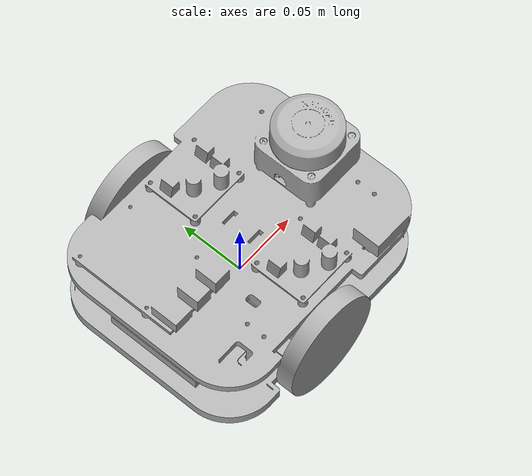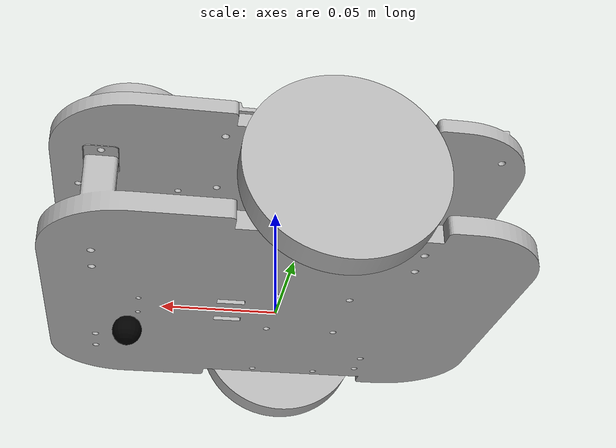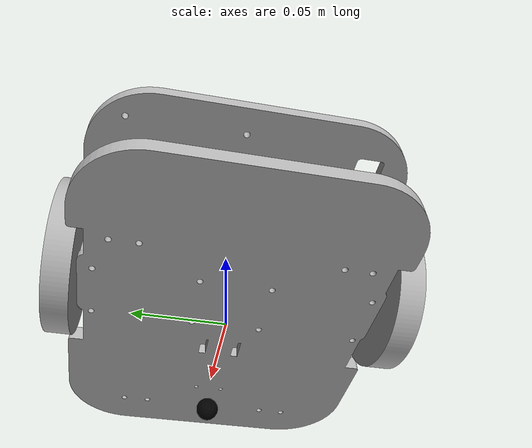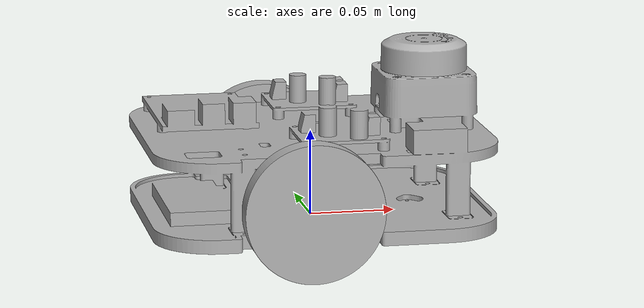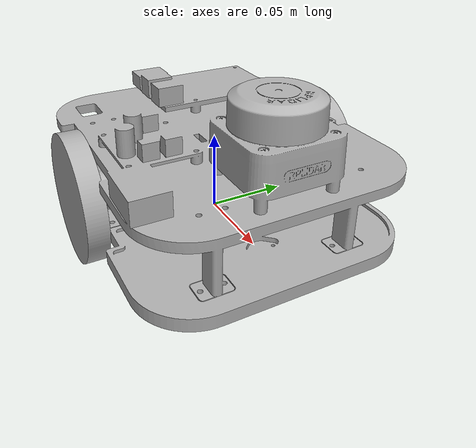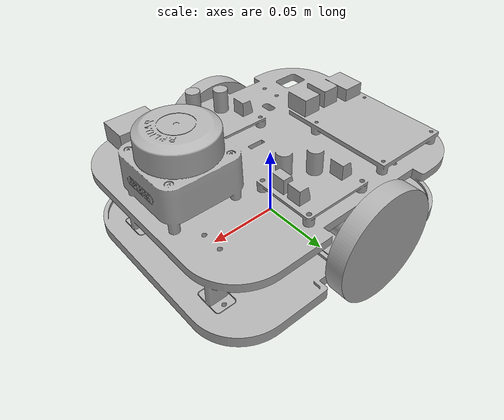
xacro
<?xml version="1.0"?>
<robot xmlns:xacro="http://www.ros.org/wiki/xacro"  name="roboto">

    <xacro:arg name="sim_mode" default="true"/>

    <xacro:include filename="robot_core.xacro" />

    <xacro:if value="$(arg sim_mode)">
        <xacro:include filename="$(find roboto_diffbot)/sim/gazebo/robot.gazebo.xacro"/>
    </xacro:if>

    <xacro:include filename="$(find roboto_diffbot)/sim/gazebo/ros2_control.xacro"/>

</robot>

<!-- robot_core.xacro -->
<robot xmlns:xacro="http://www.ros.org/wiki/xacro" >

    <xacro:include filename="inertial_macros.xacro"/>

    <xacro:include filename="$(find roboto_diffbot)/description/robot/materials.xacro" />

    <link name="base_link">
    <inertial>
        <origin xyz="-0.0022769860063732495 -0.0006106463755604264 0.0295548678674386" rpy="0 0 0"/>
        <mass value="0.5933300696386302"/>
        <inertia ixx="0.001482" iyy="0.002089" izz="0.002883" ixy="6.5e-05" iyz="1.2e-05" ixz="-0.0001"/>
    </inertial>
    <visual>
        <origin xyz="0 0 0" rpy="0 0 0"/>
        <geometry>
        <mesh filename="file://$(find roboto_diffbot)/description/robot/meshes/base_link.stl" scale="0.001 0.001 0.001"/>
        </geometry>
        <material name="silver"/>
    </visual>
    <collision>
        <origin xyz="0 0 0" rpy="0 0 0"/>
        <geometry>
        <mesh filename="file://$(find roboto_diffbot)/description/robot/meshes/base_link.stl" scale="0.001 0.001 0.001"/>
        </geometry>
    </collision>
    </link>

    <joint name="base_footprint_joint" type="fixed">
        <parent link="base_link"/>
        <child link="base_footprint"/>
        <origin xyz="0.0 0.0 0.0" rpy="0.0 0.0 0.0"/>
    </joint>

    <link name="base_footprint">

    </link>

    <link name="left_wheel">
    <inertial>
        <origin xyz="-4.928047540112002e-07 0.00649999998366961 1.4028976041274843e-07" rpy="0 0 0"/>
        <mass value="0.06534512719466766"/>
        <inertia ixx="2.7e-05" iyy="5.2e-05" izz="2.7e-05" ixy="0.0" iyz="0.0" ixz="0.0"/>
    </inertial>
    <visual>
        <origin xyz="0.014004 -0.078 -0.021997" rpy="0 0 0"/>
        <geometry>
        <mesh filename="file://$(find roboto_diffbot)/description/robot/meshes/left_wheel_1.stl" scale="0.001 0.001 0.001"/>
        </geometry>
        <material name="silver"/>
    </visual>
    <collision>
        <origin xyz="0.014004 -0.078 -0.021997" rpy="0 0 0"/>
        <geometry>
        <mesh filename="file://$(find roboto_diffbot)/description/robot/meshes/left_wheel_1.stl" scale="0.001 0.001 0.001"/>
        </geometry>
    </collision>
    </link>

    <link name="right_wheel">
    <inertial>
        <origin xyz="-4.928279983152511e-07 -0.006499999983669735 1.4028975616267592e-07" rpy="0 0 0"/>
        <mass value="0.06534512719466772"/>
        <inertia ixx="2.7e-05" iyy="5.2e-05" izz="2.7e-05" ixy="0.0" iyz="0.0" ixz="0.0"/>
    </inertial>
    <visual>
        <origin xyz="0.014004 0.078 -0.021997" rpy="0 0 0"/>
        <geometry>
        <mesh filename="file://$(find roboto_diffbot)/description/robot/meshes/right_wheel_1.stl"
            scale="0.001 0.001 0.001"/>
        </geometry>
        <material name="silver"/>
    </visual>
    <collision>
        <origin xyz="0.014004 0.078 -0.021997" rpy="0 0 0"/>
        <geometry>
        <mesh filename="file://$(find roboto_diffbot)/description/robot/meshes/right_wheel_1.stl"
            scale="0.001 0.001 0.001"/>
        </geometry>
    </collision>
    </link>

    <joint name="right_wheel_joint" type="continuous">
        <origin xyz="-0.014004 -0.078 0.021997" rpy="0 0 0"/>
        <parent link="base_link"/>
        <child link="right_wheel"/>
        <axis xyz="-0.0 1.0 -0.0"/>
    </joint>

    <link name="lidar_link">
    <inertial>
        <origin xyz="1.0280064668785616e-05 1.1690792628638037e-07 0.012400389023013991" rpy="0 0 0"/>
        <mass value="0.005290200757156612"/>
        <inertia ixx="1e-06" iyy="1e-06" izz="2e-06" ixy="-0.0" iyz="-0.0" ixz="-0.0"/>
    </inertial>
    <visual>
        <origin xyz="-0.067726 -0.0 -0.084534" rpy="0 0 0"/>
        <geometry>
        <mesh filename="file://$(find roboto_diffbot)/description/robot/meshes/lidar_link_1.stl" scale="0.001 0.001 0.001"/>
        </geometry>
        <material name="silver"/>
    </visual>
    <collision>
        <origin xyz="-0.067726 -0.0 -0.084534" rpy="0 0 0"/>
        <geometry>
        <mesh filename="file://$(find roboto_diffbot)/description/robot/meshes/lidar_link_1.stl" scale="0.001 0.001 0.001"/>
        </geometry>
    </collision>
    </link>

    <link name="camera_link">
    </link>

    <link name="camera_link_optical">

    </link>

    <joint name="left_wheel_joint" type="continuous">
    <origin xyz="-0.014004 0.078 0.021997" rpy="0 0 0"/>
    <parent link="base_link"/>
    <child link="left_wheel"/>
    <axis xyz="0.0 1.0 0.0"/>
    </joint>

    <joint name="lidar_joint" type="fixed">
    <origin xyz="0.067726 0.0 0.084534" rpy="0 0 ${pi}"/>
    <parent link="base_link"/>
    <child link="lidar_link"/>
    </joint>

    <joint name="camera_joint" type="fixed">
    <origin xyz="0.107726 0.0 0.064534" rpy="0 0 0"/>
    <parent link="base_link"/>
    <child link="camera_link"/>
    </joint>

    <joint name="camera_optical_joint" type="fixed">
    <origin xyz="0 0 0" rpy="${-pi/2} 0 ${-pi/2}"/>
    <parent link="camera_link"/>
    <child link="camera_link_optical"/>
    </joint>

    <joint name="caster_wheel_joint" type="fixed">
        <parent link="base_link"/>
        <child link="caster_wheel"/>
        <origin xyz="0.064 0 -0.012"/>
    </joint>

    <link name="caster_wheel">
        <visual>
            <geometry>
                <sphere radius="0.0063"/>
            </geometry>
            <material name="black"/>
        </visual>
        <collision>
            <geometry>
                <sphere radius="0.0063"/>
            </geometry>
        </collision>
        <xacro:inertial_sphere mass="0.02" radius="0.0063">
            <origin xyz="0 0 0" rpy="0 0 0"/>
        </xacro:inertial_sphere>
    </link>

</robot>

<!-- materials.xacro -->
<robot name="roboto" xmlns:xacro="http://www.ros.org/wiki/xacro" >

<material name="silver">
  <color rgba="0.700 0.700 0.700 1.000"/>
</material>

<material name="white">
    <color rgba="1 1 1 1" />
</material>

<material name="orange">
    <color rgba="1 0.3 0.1 1"/>
</material>

<material name="blue">
    <color rgba="0.2 0.2 1 1"/>
</material>

<material name="black">
    <color rgba="0 0 0 1"/>
</material>

</robot>
